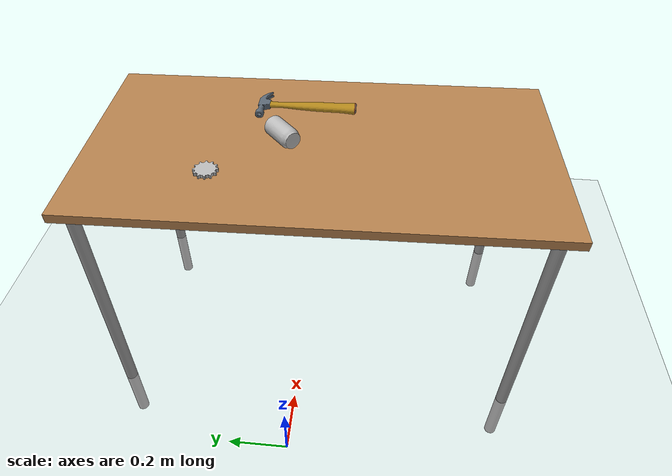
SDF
<sdf version="1.7">
 <world name="default">
  <light name="sun" type="directional">
   <pose>0 0 10 0 -0 0</pose>
   <diffuse>0.8 0.8 0.8 1</diffuse>
   <specular>0.2 0.2 0.2 1</specular>
   <attenuation>
    <range>1000</range>
    <constant>0.9</constant>
    <linear>0.01</linear>
    <quadratic>0.001</quadratic>
   </attenuation>
   <direction>-0.5 0.1 -0.9</direction>
   <spot><inner_angle>0</inner_angle><outer_angle>0</outer_angle><falloff>0</falloff></spot>
  </light>
  <model name="ground_plane">
   <static>1</static>
   <link name="link">
    <collision name="collision">
     <geometry><plane><normal>0 0 1</normal><size>100 100</size></plane></geometry>
     <surface><friction><ode><mu>100</mu><mu2>50</mu2></ode></friction></surface>
    </collision>
    <visual name="visual">
     <cast_shadows>0</cast_shadows>
     <geometry><plane><normal>0 0 1</normal><size>100 100</size></plane></geometry>
     <material>
      <script><uri>file://media/materials/scripts/gazebo.material</uri><name>Gazebo/Grey</name></script>
     </material>
    </visual>
   </link>
  </model>
  <gravity>0 0 -9.8</gravity>
  <magnetic_field>6e-06 2.3e-05 -4.2e-05</magnetic_field>
  <atmosphere type="adiabatic"/>
  <physics type="ode">
   <max_step_size>0.001</max_step_size>
   <real_time_factor>1</real_time_factor>
   <real_time_update_rate>1000</real_time_update_rate>
  </physics>
  <scene><ambient>0.8 0.8 0.8 1</ambient><background>0.7 0.7 0.7 1</background><shadows>1</shadows></scene>
  <audio><device>default</device></audio>
  <spherical_coordinates>
   <surface_model>EARTH_WGS84</surface_model>
   <latitude_deg>0</latitude_deg>
   <longitude_deg>0</longitude_deg>
   <elevation>0</elevation>
   <heading_deg>0</heading_deg>
  </spherical_coordinates>
  <model name="table">
   <static>1</static>
   <link name="link">
    <collision name="surface">
     <pose>0 0 1 0 -0 0</pose>
     <geometry><box><size>1.5 0.8 0.03</size></box></geometry>
     <surface><friction><ode><mu>0.6</mu><mu2>0.6</mu2></ode></friction></surface>
    </collision>
    <visual name="visual1">
     <pose>0 0 1 0 -0 0</pose>
     <geometry><box><size>1.5 0.8 0.03</size></box></geometry>
     <material>
      <script><uri>file://media/materials/scripts/gazebo.material</uri><name>Gazebo/Wood</name></script>
     </material>
    </visual>
    <collision name="front_left_leg">
     <pose>0.68 0.38 0.5 0 -0 0</pose>
     <geometry><cylinder><radius>0.02</radius><length>1</length></cylinder></geometry>
    </collision>
    <visual name="front_left_leg">
     <pose>0.68 0.38 0.5 0 -0 0</pose>
     <geometry><cylinder><radius>0.02</radius><length>1</length></cylinder></geometry>
     <material>
      <script><uri>file://media/materials/scripts/gazebo.material</uri><name>Gazebo/Grey</name></script>
     </material>
    </visual>
    <collision name="front_right_leg">
     <pose>0.68 -0.38 0.5 0 -0 0</pose>
     <geometry><cylinder><radius>0.02</radius><length>1</length></cylinder></geometry>
    </collision>
    <visual name="front_right_leg">
     <pose>0.68 -0.38 0.5 0 -0 0</pose>
     <geometry><cylinder><radius>0.02</radius><length>1</length></cylinder></geometry>
     <material>
      <script><uri>file://media/materials/scripts/gazebo.material</uri><name>Gazebo/Grey</name></script>
     </material>
    </visual>
    <collision name="back_right_leg">
     <pose>-0.68 -0.38 0.5 0 -0 0</pose>
     <geometry><cylinder><radius>0.02</radius><length>1</length></cylinder></geometry>
    </collision>
    <visual name="back_right_leg">
     <pose>-0.68 -0.38 0.5 0 -0 0</pose>
     <geometry><cylinder><radius>0.02</radius><length>1</length></cylinder></geometry>
     <material>
      <script><uri>file://media/materials/scripts/gazebo.material</uri><name>Gazebo/Grey</name></script>
     </material>
    </visual>
    <collision name="back_left_leg">
     <pose>-0.68 0.38 0.5 0 -0 0</pose>
     <geometry><cylinder><radius>0.02</radius><length>1</length></cylinder></geometry>
    </collision>
    <visual name="back_left_leg">
     <pose>-0.68 0.38 0.5 0 -0 0</pose>
     <geometry><cylinder><radius>0.02</radius><length>1</length></cylinder></geometry>
     <material>
      <script><uri>file://media/materials/scripts/gazebo.material</uri><name>Gazebo/Grey</name></script>
     </material>
    </visual>
   </link>
   <pose>0.628743 -0.054706 -0.216115 0 0 -1.54736</pose>
  </model>
  <plugin name="gazebo_link_attacher" filename="libgazebo_link_attacher.so"/>
  <plugin name="gazebo_ros_init" filename="libgazebo_ros_init.so"/>
  <plugin name="gazebo_ros_factory" filename="libgazebo_ros_factory.so"/>
  <model name="coke_can">
   <link name="link">
    <inertial>
     <pose>0 0 0.06 0 -0 0</pose>
     <mass>0.39</mass>
     <inertia>
      <ixx>0.00055575</ixx>
      <ixy>0</ixy>
      <ixz>0</ixz>
      <iyy>0.00055575</iyy>
      <iyz>0</iyz>
      <izz>0.0001755</izz>
     </inertia>
    </inertial>
    <collision name="collision">
     <pose>0.003937 0.004724 -0.18 0 -0 0</pose>
     <geometry><mesh><uri>model://coke_can/meshes/coke_can.dae</uri></mesh></geometry>
     <surface>
      <friction><ode><mu>1</mu><mu2>1</mu2></ode></friction>
      <contact><ode><kp>1e+07</kp><kd>1</kd><min_depth>0.001</min_depth><max_vel>0.1</max_vel></ode></contact>
     </surface>
    </collision>
    <visual name="visual">
     <pose>0.003937 0.004724 -0.18 0 -0 0</pose>
     <geometry><mesh><uri>model://coke_can/meshes/coke_can.dae</uri></mesh></geometry>
    </visual>
   </link>
   <pose>0.681233 0.112683 0.8299 -1.54735 0.784486 2.30823</pose>
  </model>
  <model name="gear_part">
   <link name="link">
    <inertial>
     <pose>0 0 0.005875 0 -0 0</pose>
     <mass>0.5</mass>
     <inertia>
      <ixx>0.000198203</ixx>
      <ixy>0</ixy>
      <ixz>0</ixz>
      <iyy>0.000198203</iyy>
      <iyz>0</iyz>
      <izz>0.000384405</izz>
     </inertia>
    </inertial>
    <collision name="collision">
     <pose>0 0 0.005875 0 -0 0</pose>
     <geometry><cylinder><length>0.012</length><radius>0.0392125</radius></cylinder></geometry>
     <surface><contact><ode><max_vel>0.1</max_vel><min_depth>0.001</min_depth></ode></contact></surface>
    </collision>
    <visual name="visual">
     <geometry><mesh><uri>model://gear_part/meshes/gear.dae</uri><scale>0.25 0.25 0.25</scale></mesh></geometry>
     <material>
      <script>
       <uri>model://arm_part/materials/scripts</uri>
       <uri>model://arm_part/materials/textures</uri>
       <name>ArmPart/Diffuse</name>
      </script>
     </material>
    </visual>
   </link>
   <pose>0.449857 0.278101 0.798572 0 -0 0</pose>
  </model>
  <model name="hammer">
   <static>1</static>
   <link name="link">
    <collision name="collision">
     <geometry><mesh><uri>model://hammer/meshes/hammer.dae</uri></mesh></geometry>
    </collision>
    <visual name="visual"><geometry><mesh><uri>model://hammer/meshes/hammer.dae</uri></mesh></geometry></visual>
   </link>
   <pose>0.815015 0.084199 0.813545 0 -0 0</pose>
  </model>
 </world>
</sdf>
